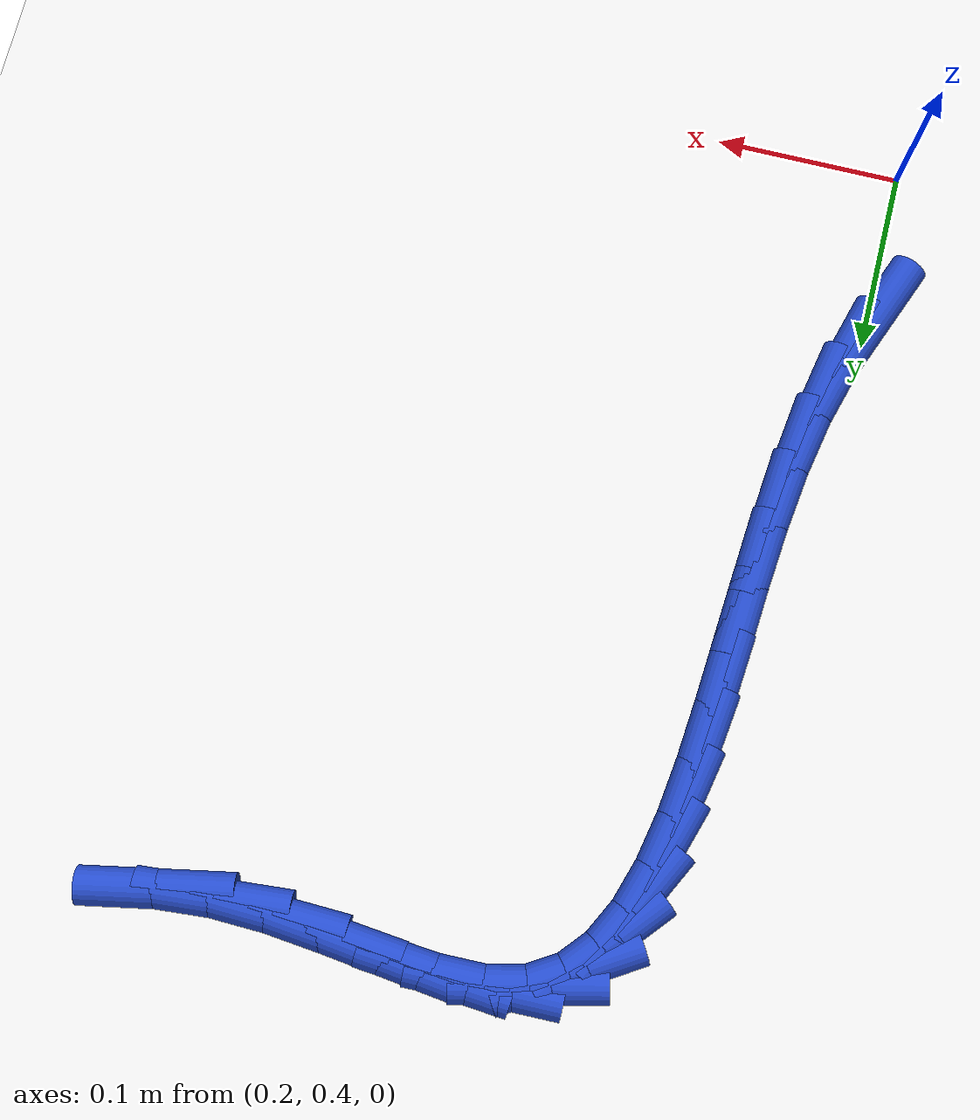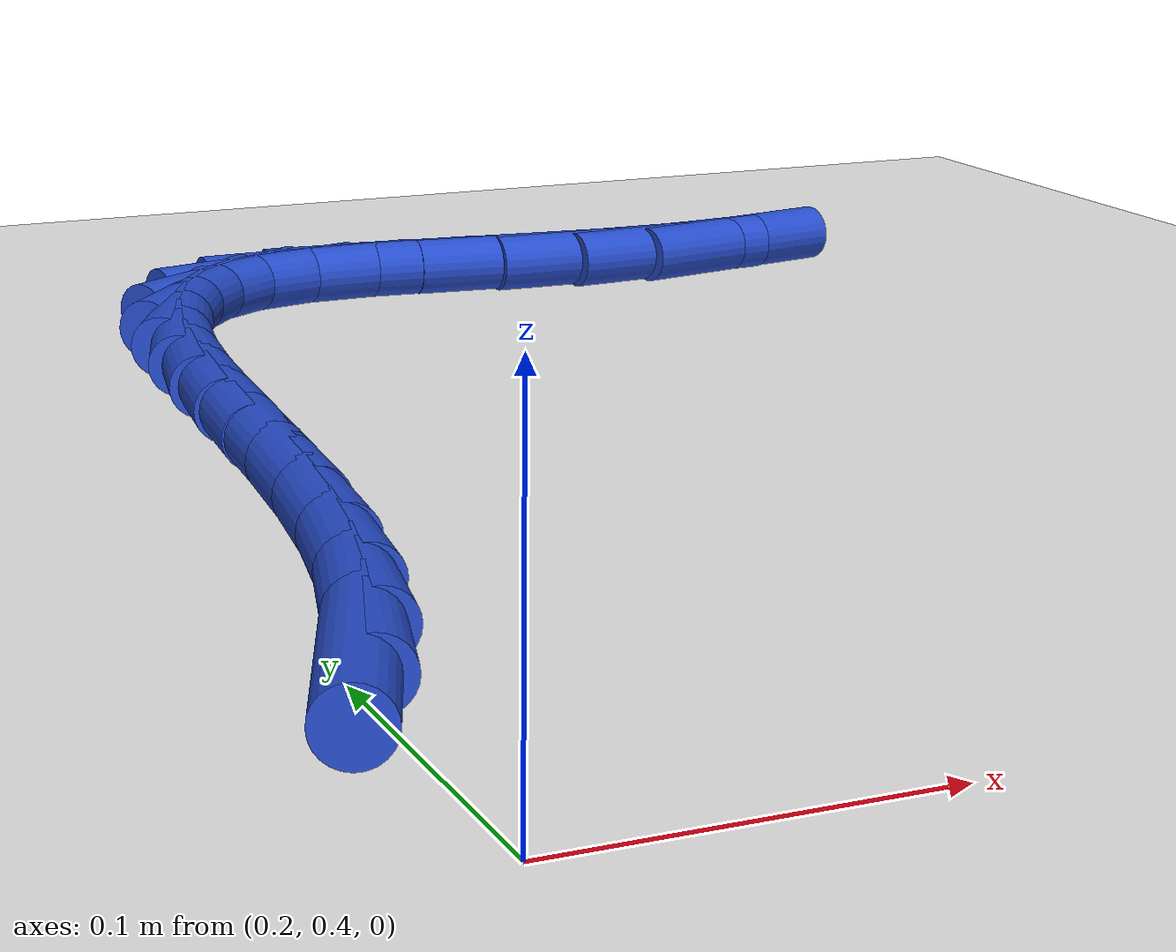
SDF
<sdf version="1.6">
 <world name="default">
  <model name="ground_plane">
   <static>1</static>
   <link name="link">
    <collision name="collision">
     <geometry><plane><normal>0 0 1</normal><size>100 100</size></plane></geometry>
     <surface><friction><ode><mu>100</mu><mu2>50</mu2></ode></friction></surface>
    </collision>
    <visual name="visual">
     <cast_shadows>0</cast_shadows>
     <geometry><plane><normal>0 0 1</normal><size>100 100</size></plane></geometry>
     <material>
      <script><uri>file://media/materials/scripts/gazebo.material</uri><name>Gazebo/WhiteGlow</name></script>
     </material>
    </visual>
   </link>
  </model>
  <model name="line">
   <link name="link_20">
    <pose>0.1993035890124363 0.4901622575588358 0.01 0 1.57 1.1970229695478407</pose>
    <collision name="collision">
     <geometry><cylinder><radius>0.01</radius><length>0.08</length></cylinder></geometry>
    </collision>
    <visual name="visual">
     <material>
      <script><name>Gazebo/Blue</name><uri>file://media/materials/scripts/gazebo.material</uri></script>
     </material>
     <geometry><cylinder><radius>0.01</radius><length>0.08</length></cylinder></geometry>
    </visual>
   </link>
   <link name="link_21">
    <pose>0.21012345405646815 0.5177491361572544 0.01 0 1.57 1.2937979636964438</pose>
    <collision name="collision">
     <geometry><cylinder><radius>0.01</radius><length>0.08</length></cylinder></geometry>
    </collision>
    <visual name="visual">
     <material>
      <script><name>Gazebo/Blue</name><uri>file://media/materials/scripts/gazebo.material</uri></script>
     </material>
     <geometry><cylinder><radius>0.01</radius><length>0.08</length></cylinder></geometry>
    </visual>
   </link>
   <link name="link_22">
    <pose>0.21853895741755916 0.5473491634436342 0.01 0 1.57 1.3790163676794251</pose>
    <collision name="collision">
     <geometry><cylinder><radius>0.01</radius><length>0.08</length></cylinder></geometry>
    </collision>
    <visual name="visual">
     <material>
      <script><name>Gazebo/Blue</name><uri>file://media/materials/scripts/gazebo.material</uri></script>
     </material>
     <geometry><cylinder><radius>0.01</radius><length>0.08</length></cylinder></geometry>
    </visual>
   </link>
   <link name="link_23">
    <pose>0.22464140408952282 0.5787781382129381 0.01 0 1.57 1.4390722565192233</pose>
    <collision name="collision">
     <geometry><cylinder><radius>0.01</radius><length>0.08</length></cylinder></geometry>
    </collision>
    <visual name="visual">
     <material>
      <script><name>Gazebo/Blue</name><uri>file://media/materials/scripts/gazebo.material</uri></script>
     </material>
     <geometry><cylinder><radius>0.01</radius><length>0.08</length></cylinder></geometry>
    </visual>
   </link>
   <link name="link_24">
    <pose>0.2289674018992578 0.611429333612908 0.01 0 1.57 1.4776936303249002</pose>
    <collision name="collision">
     <geometry><cylinder><radius>0.01</radius><length>0.08</length></cylinder></geometry>
    </collision>
    <visual name="visual">
     <material>
      <script><name>Gazebo/Blue</name><uri>file://media/materials/scripts/gazebo.material</uri></script>
     </material>
     <geometry><cylinder><radius>0.01</radius><length>0.08</length></cylinder></geometry>
    </visual>
   </link>
   <link name="link_25">
    <pose>0.23207196938696725 0.6446785537837316 0.01 0 1.57 1.4975401751997912</pose>
    <collision name="collision">
     <geometry><cylinder><radius>0.01</radius><length>0.08</length></cylinder></geometry>
    </collision>
    <visual name="visual">
     <material>
      <script><name>Gazebo/Blue</name><uri>file://media/materials/scripts/gazebo.material</uri></script>
     </material>
     <geometry><cylinder><radius>0.01</radius><length>0.08</length></cylinder></geometry>
    </visual>
   </link>
   <link name="link_26">
    <pose>0.23451012509285446 0.6779016028655971 0.01 0 1.57 1.4994845151319292</pose>
    <collision name="collision">
     <geometry><cylinder><radius>0.01</radius><length>0.08</length></cylinder></geometry>
    </collision>
    <visual name="visual">
     <material>
      <script><name>Gazebo/Blue</name><uri>file://media/materials/scripts/gazebo.material</uri></script>
     </material>
     <geometry><cylinder><radius>0.01</radius><length>0.08</length></cylinder></geometry>
    </visual>
   </link>
   <link name="link_27">
    <pose>0.23683688755712265 0.710474284998692 0.01 0 1.57 1.4825103139550786</pose>
    <collision name="collision">
     <geometry><cylinder><radius>0.01</radius><length>0.08</length></cylinder></geometry>
    </collision>
    <visual name="visual">
     <material>
      <script><name>Gazebo/Blue</name><uri>file://media/materials/scripts/gazebo.material</uri></script>
     </material>
     <geometry><cylinder><radius>0.01</radius><length>0.08</length></cylinder></geometry>
    </visual>
   </link>
   <link name="link_28">
    <pose>0.239607275319975 0.7417724043232042 0.01 0 1.57 1.4432906906127048</pose>
    <collision name="collision">
     <geometry><cylinder><radius>0.01</radius><length>0.08</length></cylinder></geometry>
    </collision>
    <visual name="visual">
     <material>
      <script><name>Gazebo/Blue</name><uri>file://media/materials/scripts/gazebo.material</uri></script>
     </material>
     <geometry><cylinder><radius>0.01</radius><length>0.08</length></cylinder></geometry>
    </visual>
   </link>
   <link name="link_29">
    <pose>0.243376306921615 0.7711717649793222 0.01 0 1.57 1.3752828501387808</pose>
    <collision name="collision">
     <geometry><cylinder><radius>0.01</radius><length>0.08</length></cylinder></geometry>
    </collision>
    <visual name="visual">
     <material>
      <script><name>Gazebo/Blue</name><uri>file://media/materials/scripts/gazebo.material</uri></script>
     </material>
     <geometry><cylinder><radius>0.01</radius><length>0.08</length></cylinder></geometry>
    </visual>
   </link>
   <link name="link_30">
    <pose>0.2486990009022455 0.7980481711072328 0.01 0 1.57 1.2672979643005648</pose>
    <collision name="collision">
     <geometry><cylinder><radius>0.01</radius><length>0.08</length></cylinder></geometry>
    </collision>
    <visual name="visual">
     <material>
      <script><name>Gazebo/Blue</name><uri>file://media/materials/scripts/gazebo.material</uri></script>
     </material>
     <geometry><cylinder><radius>0.01</radius><length>0.08</length></cylinder></geometry>
    </visual>
   </link>
   <link name="link_31">
    <pose>0.2561303758020701 0.821777426847125 0.01 0 1.57 1.1025049783706544</pose>
    <collision name="collision">
     <geometry><cylinder><radius>0.01</radius><length>0.08</length></cylinder></geometry>
    </collision>
    <visual name="visual">
     <material>
      <script><name>Gazebo/Blue</name><uri>file://media/materials/scripts/gazebo.material</uri></script>
     </material>
     <geometry><cylinder><radius>0.01</radius><length>0.08</length></cylinder></geometry>
    </visual>
   </link>
   <link name="link_32">
    <pose>0.26622545016129184 0.8417353363391863 0.01 0 1.57 0.8631109421613034</pose>
    <collision name="collision">
     <geometry><cylinder><radius>0.01</radius><length>0.08</length></cylinder></geometry>
    </collision>
    <visual name="visual">
     <material>
      <script><name>Gazebo/Blue</name><uri>file://media/materials/scripts/gazebo.material</uri></script>
     </material>
     <geometry><cylinder><radius>0.01</radius><length>0.08</length></cylinder></geometry>
    </visual>
   </link>
   <link name="link_33">
    <pose>0.279539242520114 0.857297703723604 0.01 0 1.57 0.5528098778946544</pose>
    <collision name="collision">
     <geometry><cylinder><radius>0.01</radius><length>0.08</length></cylinder></geometry>
    </collision>
    <visual name="visual">
     <material>
      <script><name>Gazebo/Blue</name><uri>file://media/materials/scripts/gazebo.material</uri></script>
     </material>
     <geometry><cylinder><radius>0.01</radius><length>0.08</length></cylinder></geometry>
    </visual>
   </link>
   <link name="link_34">
    <pose>0.29662677141873994 0.8678403331405669 0.01 0 1.57 0.23369263647647787</pose>
    <collision name="collision">
     <geometry><cylinder><radius>0.01</radius><length>0.08</length></cylinder></geometry>
    </collision>
    <visual name="visual">
     <material>
      <script><name>Gazebo/Blue</name><uri>file://media/materials/scripts/gazebo.material</uri></script>
     </material>
     <geometry><cylinder><radius>0.01</radius><length>0.08</length></cylinder></geometry>
    </visual>
   </link>
   <link name="link_35">
    <pose>0.31792598854462595 0.8729104377418461 0.01 0 1.57 0.022684399845467704</pose>
    <collision name="collision">
     <geometry><cylinder><radius>0.01</radius><length>0.08</length></cylinder></geometry>
    </collision>
    <visual name="visual">
     <material>
      <script><name>Gazebo/Blue</name><uri>file://media/materials/scripts/gazebo.material</uri></script>
     </material>
     <geometry><cylinder><radius>0.01</radius><length>0.08</length></cylinder></geometry>
    </visual>
   </link>
   <link name="link_36">
    <pose>0.342903727188701 0.8734771399607384 0.01 0 1.57 -0.0817232055964169</pose>
    <collision name="collision">
     <geometry><cylinder><radius>0.01</radius><length>0.08</length></cylinder></geometry>
    </collision>
    <visual name="visual">
     <material>
      <script><name>Gazebo/Blue</name><uri>file://media/materials/scripts/gazebo.material</uri></script>
     </material>
     <geometry><cylinder><radius>0.01</radius><length>0.08</length></cylinder></geometry>
    </visual>
   </link>
   <link name="link_37">
    <pose>0.3705463591314357 0.8712130528487595 0.01 0 1.57 -0.11614263825957945</pose>
    <collision name="collision">
     <geometry><cylinder><radius>0.01</radius><length>0.08</length></cylinder></geometry>
    </collision>
    <visual name="visual">
     <material>
      <script><name>Gazebo/Blue</name><uri>file://media/materials/scripts/gazebo.material</uri></script>
     </material>
     <geometry><cylinder><radius>0.01</radius><length>0.08</length></cylinder></geometry>
    </visual>
   </link>
   <link name="link_38">
    <pose>0.39983683356402916 0.8677958008046194 0.01 0 1.57 -0.096380606063075</pose>
    <collision name="collision">
     <geometry><cylinder><radius>0.01</radius><length>0.08</length></cylinder></geometry>
    </collision>
    <visual name="visual">
     <material>
      <script><name>Gazebo/Blue</name><uri>file://media/materials/scripts/gazebo.material</uri></script>
     </material>
     <geometry><cylinder><radius>0.01</radius><length>0.08</length></cylinder></geometry>
    </visual>
   </link>
   <link name="link_39">
    <pose>0.42975809967767986 0.8649030082270286 0.01 0 1.57 -0.02363803837802374</pose>
    <collision name="collision">
     <geometry><cylinder><radius>0.01</radius><length>0.08</length></cylinder></geometry>
    </collision>
    <visual name="visual">
     <material>
      <script><name>Gazebo/Blue</name><uri>file://media/materials/scripts/gazebo.material</uri></script>
     </material>
     <geometry><cylinder><radius>0.01</radius><length>0.08</length></cylinder></geometry>
    </visual>
   </link>
   <link name="link_40">
    <pose>0.45929727903754886 0.8642046298922577 0.01 0 1.57 0.08625943504643795</pose>
    <collision name="collision">
     <geometry><cylinder><radius>0.01</radius><length>0.08</length></cylinder></geometry>
    </collision>
    <visual name="visual">
     <material>
      <script><name>Gazebo/Blue</name><uri>file://media/materials/scripts/gazebo.material</uri></script>
     </material>
     <geometry><cylinder><radius>0.01</radius><length>0.08</length></cylinder></geometry>
    </visual>
   </link>
   <link name="link_41">
    <pose>0.48782194758707875 0.8666712725643752 0.01 0 1.57 0.19183564733399788</pose>
    <collision name="collision">
     <geometry><cylinder><radius>0.01</radius><length>0.08</length></cylinder></geometry>
    </collision>
    <visual name="visual">
     <material>
      <script><name>Gazebo/Blue</name><uri>file://media/materials/scripts/gazebo.material</uri></script>
     </material>
     <geometry><cylinder><radius>0.01</radius><length>0.08</length></cylinder></geometry>
    </visual>
   </link>
  </model>
 </world>
</sdf>
